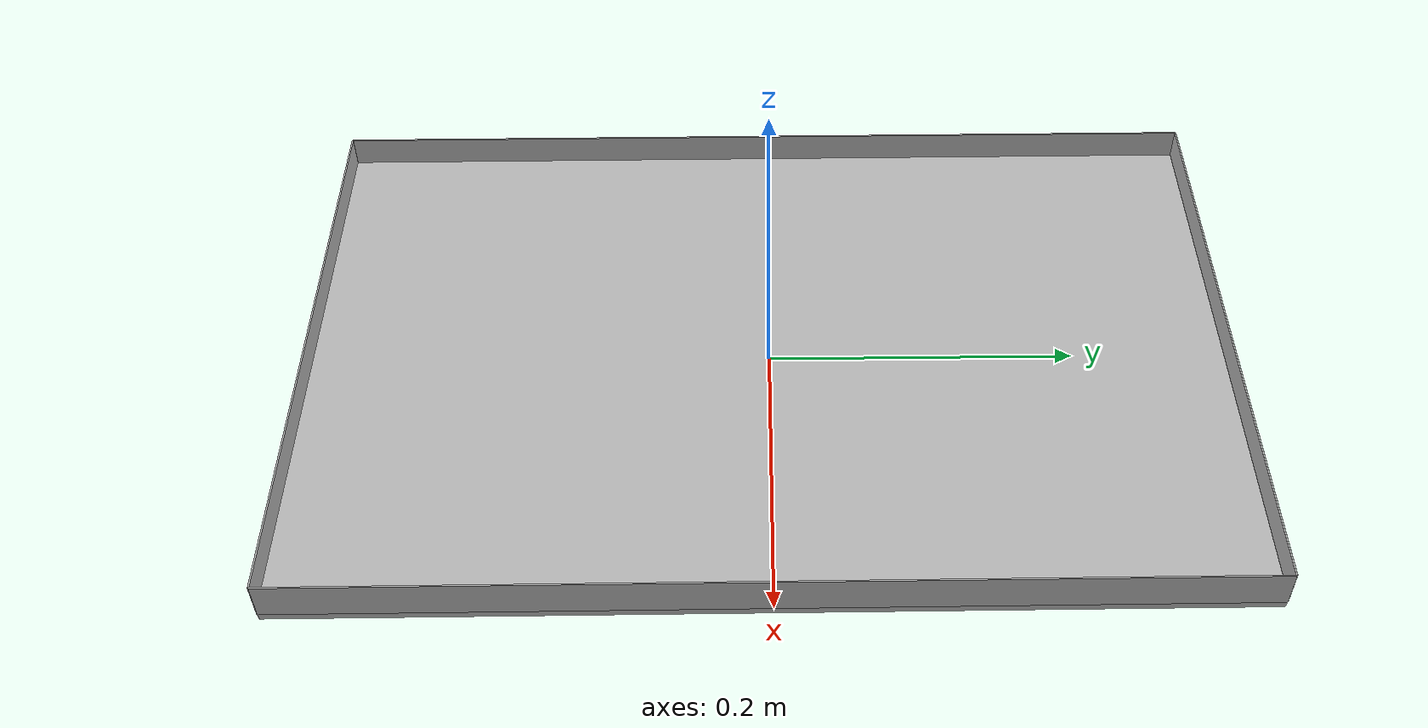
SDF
<?xml version="1.0"?>
<sdf version="1.6">
  <model name="movable_tray_metal_shiny">
    <static>false</static>
    <link name="link">
      <inertial>
        <pose>0 0 0.01 0 0 0</pose>
        <mass>0.5</mass>
        <inertia>
          <ixx>0.0009</ixx>
          <ixy>0</ixy>
          <ixz>0</ixz>
          <iyy>0.0009</iyy>
          <iyz>0</iyz>
          <izz>0.0012</izz>
        </inertia>
      </inertial>
      <sensor name='movable_tray_contact' type='contact'>
        <update_rate>5</update_rate>
        <contact>
          <collision>tray_collision</collision>
        </contact>
      </sensor>
      <collision name="tray_collision">
        <max_contacts>10</max_contacts>
        <surface>
          <contact>
            <ode>
              <max_vel>0.0</max_vel>
              <min_depth>0.001</min_depth>
            </ode>
          </contact>
        </surface>
        <geometry>
          <box>
            <size>0.4 0.6 0.01</size>
          </box>
        </geometry>
      </collision>
      <collision name="tray_collision1">
        <pose>0.2 0 0.0127 0 0 0</pose>
        <max_contacts>10</max_contacts>
        <surface>
          <contact>
            <ode>
              <max_vel>0.0</max_vel>
              <min_depth>0.001</min_depth>
            </ode>
          </contact>
        </surface>
        <geometry>
          <box>
            <size>0.001 0.6 0.0254</size>
          </box>
        </geometry>
      </collision>
      <visual name="tray_visual1">
        <pose>0.2 0 0.0127 0 0 0</pose>
        <geometry>
          <box>
            <size>0.001 0.6 0.0254</size>
          </box>
        </geometry>
        <material>
          <script>
            <uri>model://movable_tray_metal_shiny_ariac/materials/scripts</uri>
            <uri>model://movable_tray_metal_shiny_ariac/materials/textures</uri>
            <name>movable_tray_metal_shiny_texture</name>
          </script>
        </material>
      </visual>
      <collision name="tray_collision2">
        <pose>-0.2 0 0.0127 0 0 0</pose>
        <max_contacts>10</max_contacts>
        <surface>
          <contact>
            <ode>
              <max_vel>0.0</max_vel>
              <min_depth>0.001</min_depth>
            </ode>
          </contact>
        </surface>
        <geometry>
          <box>
            <size>0.001 0.6 0.0254</size>
          </box>
        </geometry>
      </collision>
      <visual name="tray_visual2">
        <pose>-0.2 0 0.0127 0 0 0</pose>
        <geometry>
          <box>
            <size>0.001 0.6 0.0254</size>
          </box>
        </geometry>
        <material>
          <script>
            <uri>model://movable_tray_metal_shiny_ariac/materials/scripts</uri>
            <uri>model://movable_tray_metal_shiny_ariac/materials/textures</uri>
            <name>movable_tray_metal_shiny_texture</name>
          </script>
        </material>
      </visual>
      <collision name="tray_collision3">
        <pose>0 0.30 0.0127 0 0 0</pose>
        <max_contacts>10</max_contacts>
        <surface>
          <contact>
            <ode>
              <max_vel>0.0</max_vel>
              <min_depth>0.001</min_depth>
            </ode>
          </contact>
        </surface>
        <geometry>
          <box>
            <size>0.4 0.001 0.0254</size>
          </box>
        </geometry>
      </collision>
      <visual name="tray_visual3">
        <pose>0 0.30 0.0127 0 0 0</pose>
        <geometry>
          <box>
            <size>0.4 0.001 0.0254</size>
          </box>
        </geometry>
        <material>
          <script>
            <uri>model://movable_tray_metal_shiny_ariac/materials/scripts</uri>
            <uri>model://movable_tray_metal_shiny_ariac/materials/textures</uri>
            <name>movable_tray_metal_shiny_texture</name>
          </script>
        </material>
      </visual>
      <collision name="tray_collision4">
        <pose>0 -0.3 0.0127 0 0 0</pose>
        <max_contacts>10</max_contacts>
        <surface>
          <contact>
            <ode>
              <max_vel>0.0</max_vel>
              <min_depth>0.001</min_depth>
            </ode>
          </contact>
        </surface>
        <geometry>
          <box>
            <size>0.4 0.001 0.0254</size>
          </box>
        </geometry>
      </collision>
      <visual name="tray_visual4">
        <pose>0 -0.3 0.0127 0 0 0</pose>
        <geometry>
          <box>
            <size>0.4 0.001 0.0254</size>
          </box>
        </geometry>
        <material>
          <script>
            <uri>model://movable_tray_metal_shiny_ariac/materials/scripts</uri>
            <uri>model://movable_tray_metal_shiny_ariac/materials/textures</uri>
            <name>movable_tray_metal_shiny_texture</name>
          </script>
        </material>
      </visual>
      <visual name="visual">
        <geometry>
          <box>
            <size>0.4 0.6 0.01</size>
          </box>
        </geometry>
        <material>
          <script>
            <uri>model://movable_tray_metal_shiny_ariac/materials/scripts</uri>
            <uri>model://movable_tray_metal_shiny_ariac/materials/textures</uri>
            <name>movable_tray_metal_shiny_texture</name>
          </script>
        </material>
      </visual>
    </link>
  </model>
</sdf>
